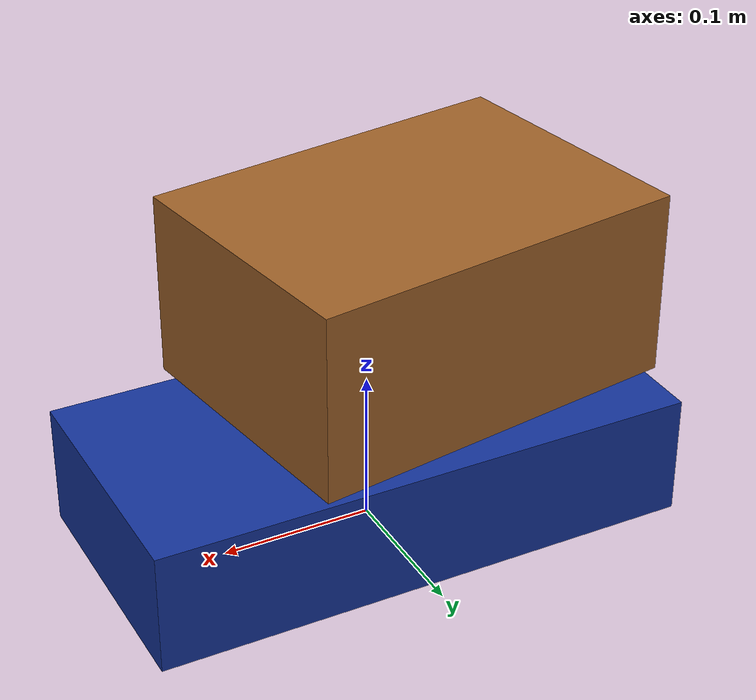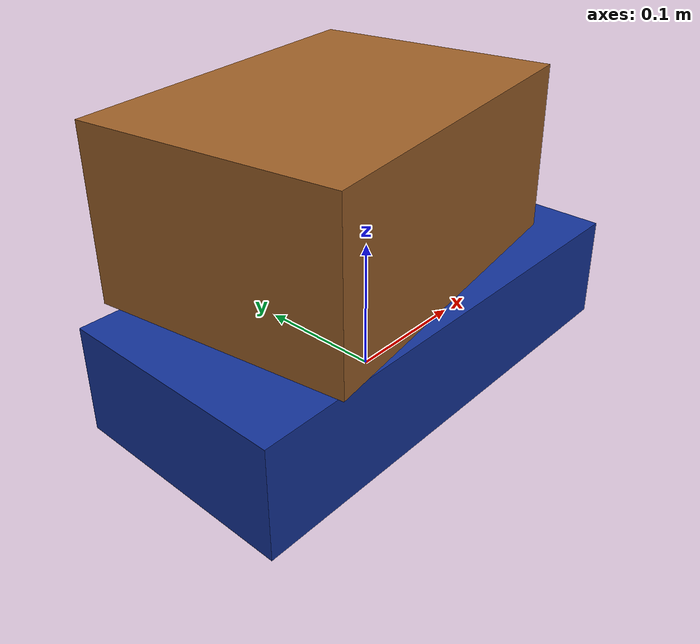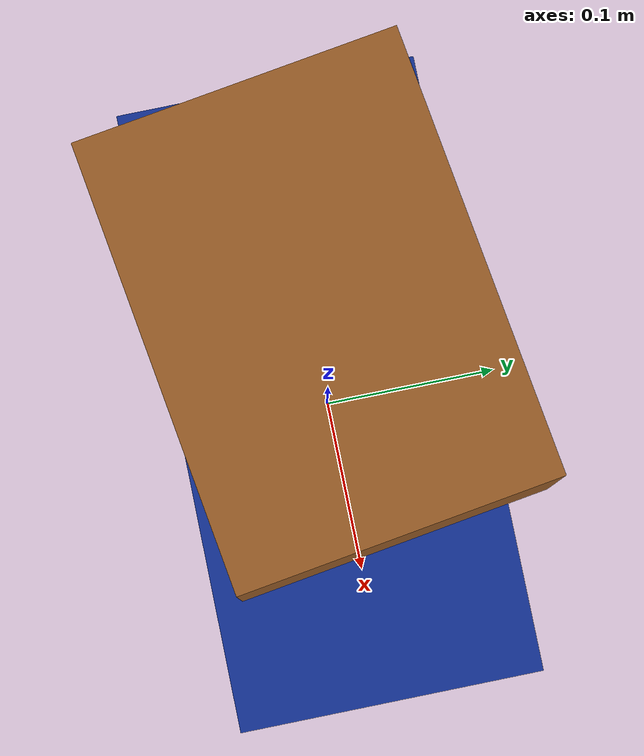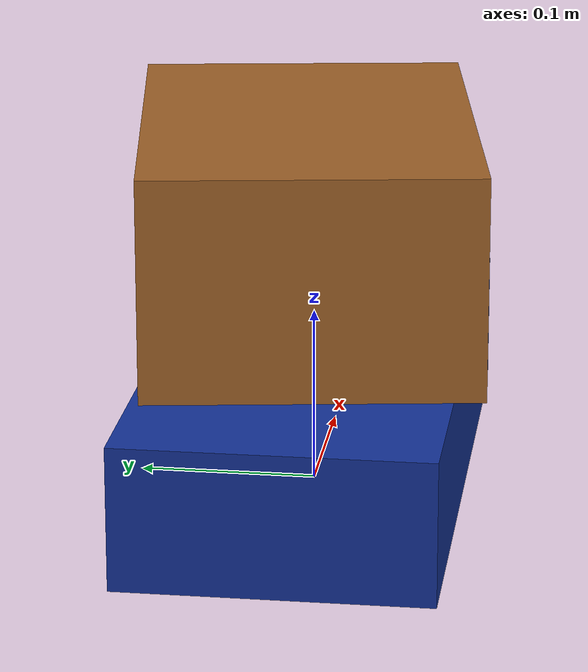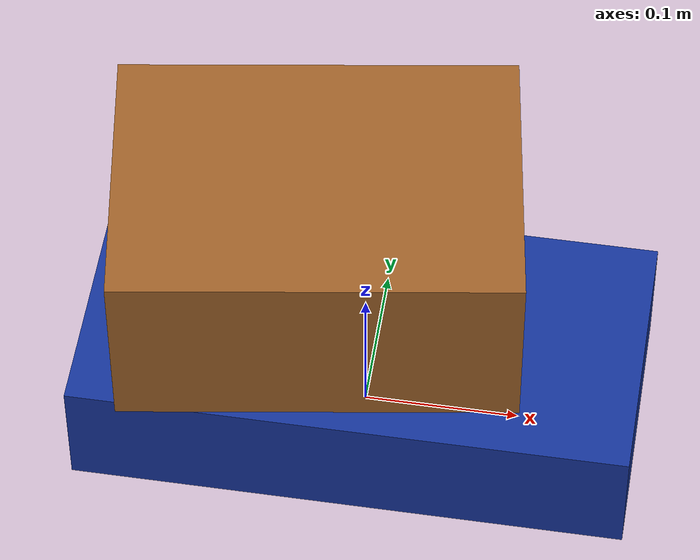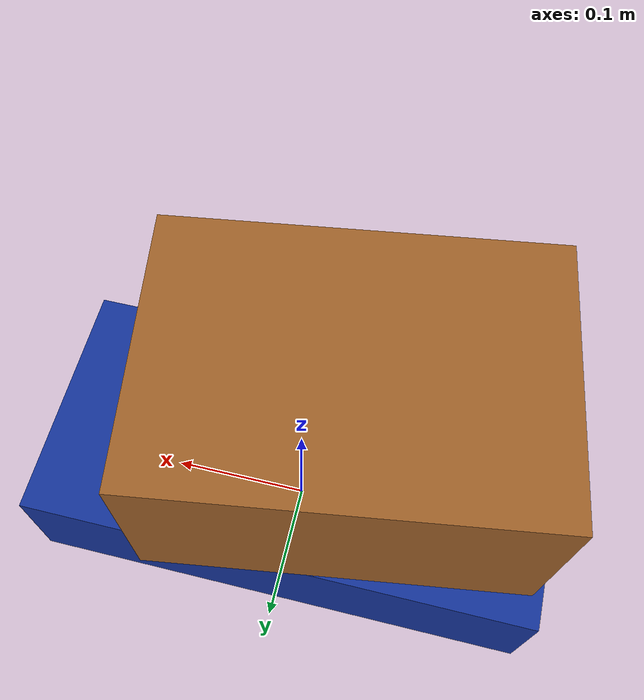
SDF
<?xml version="1.0"?>
<sdf version="1.10">
  <world name="single_cell">
    <physics name="1ms" type="ignored">
      <max_step_size>0.001</max_step_size>
      <real_time_factor>1.0</real_time_factor>
    </physics>
    <plugin filename="gz-sim-physics-system" name="gz::sim::systems::Physics"/>
    <plugin filename="gz-sim-user-commands-system" name="gz::sim::systems::UserCommands"/>
    <plugin filename="gz-sim-scene-broadcaster-system" name="gz::sim::systems::SceneBroadcaster"/>
    <light type="directional" name="sun">
      <pose>0 0 10 0 0 0</pose>
      <cast_shadows>true</cast_shadows>
      <diffuse>0.8 0.8 0.8 1</diffuse>
      <specular>0.2 0.2 0.2 1</specular>
      <direction>-0.3 0.1 -0.95</direction>
    </light>

    <model name="single_cell">
      <static>true</static>
      <link name="belt">
        <pose>0 0 0.04 0 0 0</pose>
        <collision name="belt_collision">
          <geometry><box><size>0.3563 0.17275 0.08</size></box></geometry>
          <surface><friction><ode>
            <mu>0.60</mu><mu2>0.80</mu2><fdir1>0 1 0</fdir1>
          </ode></friction></surface>
        </collision>
        <visual name="belt_visual">
          <geometry><box><size>0.3563 0.17275 0.08</size></box></geometry>
          <material><ambient>0.08 0.20 0.60 1</ambient><diffuse>0.08 0.20 0.60 1</diffuse></material>
        </visual>
      </link>
      <plugin filename="gz-sim-track-controller-system" name="gz::sim::systems::TrackController">
        <link>belt</link>
        <velocity_topic>/singulator/cell/r00_c00/cmd_vel</velocity_topic>
        <min_velocity>0.0</min_velocity><max_velocity>2.0</max_velocity>
        <min_acceleration>-2.5</min_acceleration><max_acceleration>2.5</max_acceleration>
        <min_jerk>-10.0</min_jerk><max_jerk>10.0</max_jerk>
        <max_command_age>0.25</max_command_age>
        <odometry_publish_frequency>20</odometry_publish_frequency>
      </plugin>
    </model>
    <include>
      <uri>model://box_medium</uri><name>box_0001</name>
      <pose>-0.03 0 0.16 0 0 0.15</pose>
    </include>
    <gui fullscreen="0">
      <plugin filename="MinimalScene" name="3D View">
        <gz-gui><title>3D View</title><property type="bool" key="showTitleBar">false</property><property type="string" key="state">docked</property></gz-gui>
        <engine>ogre2</engine><scene>scene</scene><ambient_light>0.6 0.6 0.6</ambient_light>
        <background_color>0.8 0.8 0.8</background_color><camera_pose>-1.0 -1.2 1.2 0 0.55 0.75</camera_pose>
      </plugin>
      <plugin filename="WorldControl" name="World control"/>
      <plugin filename="WorldStats" name="World stats"/>
    </gui>
  </world>
</sdf>

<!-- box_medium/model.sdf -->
<sdf version="1.10">
  <model name="box_medium">
    <link name="base_link">
      <inertial>
        <mass>1.0</mass>
        <inertia>
          <ixx>0.003900</ixx>
          <ixy>0.0</ixy>
          <ixz>0.0</ixz>
          <iyy>0.006408</iyy>
          <iyz>0.0</iyz>
          <izz>0.007908</izz>
        </inertia>
      </inertial>
      <collision name="collision">
        <geometry><box><size>0.25 0.18 0.12</size></box></geometry>
        <surface>
          <friction><ode><mu>0.70</mu><mu2>0.70</mu2></ode></friction>
          <bounce>
            <restitution_coefficient>0.08</restitution_coefficient>
            <threshold>100000</threshold>
          </bounce>
        </surface>
      </collision>
      <visual name="visual">
        <geometry><box><size>0.25 0.18 0.12</size></box></geometry>
        <material>
          <ambient>0.55 0.32 0.12 1</ambient>
          <diffuse>0.62 0.38 0.16 1</diffuse>
        </material>
      </visual>
    </link>
  </model>
</sdf>
